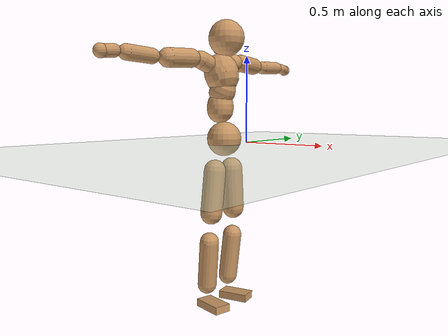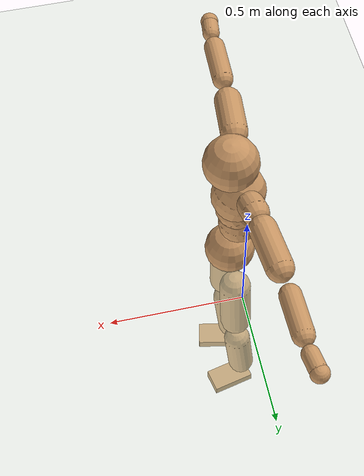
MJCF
<mujoco model="humanoid">
  <compiler coordinate="local"/>
  <default>
    <joint damping="0.0" armature="0.01" stiffness="0.0" limited="true"/>
    <geom conaffinity="1" condim="3" contype="7" margin="0.001" rgba="0.8 0.6 .4 1"/>
  </default>
  <asset>
    <texture type="skybox" builtin="gradient" rgb1=".4 .5 .6" rgb2="0 0 0" width="100" height="100"/>
    <texture builtin="flat" height="1278" mark="cross" markrgb="1 1 1" name="texgeom" random="0.01" rgb1="0.8 0.6 0.4" rgb2="0.8 0.6 0.4" type="cube" width="127"/>
    <texture builtin="checker" height="100" name="texplane" rgb1="0 0 0" rgb2="0.8 0.8 0.8" type="2d" width="100"/>
    <material name="MatPlane" reflectance="0.5" shininess="1" specular="1" texrepeat="60 60" texture="texplane"/>
    <material name="geom" texture="texgeom" texuniform="true"/>
  </asset>
  <worldbody>
    <light cutoff="100" diffuse="1 1 1" dir="-0 0 -1.3" directional="true" exponent="1" pos="0 0 1.3" specular=".1 .1 .1"/>
    <geom conaffinity="1" condim="3" name="floor" pos="0 0 0" rgba="0.8 0.9 0.8 1" size="100 100 .2" type="plane" material="MatPlane"/>
    <body name="Pelvis" pos="-0.0016 -0.2076 0.0299">
      <freejoint name="Pelvis"/>
      <geom type="sphere" contype="1" conaffinity="1" density="500" size="0.0963" pos="0.0000 0.0000 0.0000" name="Pelvis"/>
      <body name="L_Hip" pos="-0.0065 0.0691 -0.0941">
        <joint name="L_Hip_x" type="hinge" pos="0 0 0" axis="1 0 0" stiffness="800" damping="80" armature="0.02" range="-180.0000 180.0000"/>
        <joint name="L_Hip_y" type="hinge" pos="0 0 0" axis="0 1 0" stiffness="800" damping="80" armature="0.02" range="-180.0000 180.0000"/>
        <joint name="L_Hip_z" type="hinge" pos="0 0 0" axis="0 0 1" stiffness="800" damping="80" armature="0.02" range="-180.0000 180.0000"/>
        <geom type="capsule" contype="1" conaffinity="1" density="500" fromto="-0.0013 0.0070 -0.0785 -0.0051 0.0280 -0.3140" size="0.0617" name="L_Hip"/>
        <body name="L_Knee" pos="-0.0063 0.035 -0.3924">
          <joint name="L_Knee_x" type="hinge" pos="0 0 0" axis="1 0 0" stiffness="800" damping="80" armature="0.02" range="-180.0000 180.0000"/>
          <joint name="L_Knee_y" type="hinge" pos="0 0 0" axis="0 1 0" stiffness="800" damping="80" armature="0.02" range="-180.0000 180.0000"/>
          <joint name="L_Knee_z" type="hinge" pos="0 0 0" axis="0 0 1" stiffness="800" damping="80" armature="0.02" range="-180.0000 180.0000"/>
          <geom type="capsule" contype="1" conaffinity="1" density="500" fromto="-0.0089 -0.0027 -0.0839 -0.0358 -0.0106 -0.3356" size="0.0537" name="L_Knee"/>
          <body name="L_Ankle" pos="-0.0447 -0.0133 -0.4195">
            <joint name="L_Ankle_x" type="hinge" pos="0 0 0" axis="1 0 0" stiffness="800" damping="80" armature="0.02" range="-180.0000 180.0000"/>
            <joint name="L_Ankle_y" type="hinge" pos="0 0 0" axis="0 1 0" stiffness="800" damping="80" armature="0.02" range="-180.0000 180.0000"/>
            <joint name="L_Ankle_z" type="hinge" pos="0 0 0" axis="0 0 1" stiffness="800" damping="80" armature="0.02" range="-180.0000 180.0000"/>
            <geom type="box" contype="1" conaffinity="1" density="500" pos="0.0601 0.0131 -0.0289" size="0.0863 0.0475 0.0213" quat="0.9943 0.0000 0.0000 0.1070" name="L_Ankle"/>
            <body name="L_Toe" pos="0.1202 0.0262 -0.0579">
              <joint name="L_Toe_x" type="hinge" pos="0 0 0" axis="1 0 0" stiffness="500" damping="50" armature="0.02" range="-180.0000 180.0000"/>
              <joint name="L_Toe_y" type="hinge" pos="0 0 0" axis="0 1 0" stiffness="500" damping="50" armature="0.02" range="-180.0000 180.0000"/>
              <joint name="L_Toe_z" type="hinge" pos="0 0 0" axis="0 0 1" stiffness="500" damping="50" armature="0.02" range="-180.0000 180.0000"/>
              <geom type="box" contype="1" conaffinity="1" density="500" pos="0.0000 0.0000 0.0282" size="0.001 0.0023 0.001" quat="0.9936 0.0000 0.0000 0.1131" name="L_Toe"/>
            </body>
          </body>
        </body>
      </body>
      <body name="R_Hip" pos="-0.0024 -0.0674 -0.0936">
        <joint name="R_Hip_x" type="hinge" pos="0 0 0" axis="1 0 0" stiffness="800" damping="80" armature="0.02" range="-180.0000 180.0000"/>
        <joint name="R_Hip_y" type="hinge" pos="0 0 0" axis="0 1 0" stiffness="800" damping="80" armature="0.02" range="-180.0000 180.0000"/>
        <joint name="R_Hip_z" type="hinge" pos="0 0 0" axis="0 0 1" stiffness="800" damping="80" armature="0.02" range="-180.0000 180.0000"/>
        <geom type="capsule" contype="1" conaffinity="1" density="500" fromto="-0.0022 -0.0079 -0.0800 -0.0088 -0.0316 -0.3199" size="0.0609" name="R_Hip"/>
        <body name="R_Knee" pos="-0.011 -0.0395 -0.3999">
          <joint name="R_Knee_x" type="hinge" pos="0 0 0" axis="1 0 0" stiffness="800" damping="80" armature="0.02" range="-180.0000 180.0000"/>
          <joint name="R_Knee_y" type="hinge" pos="0 0 0" axis="0 1 0" stiffness="800" damping="80" armature="0.02" range="-180.0000 180.0000"/>
          <joint name="R_Knee_z" type="hinge" pos="0 0 0" axis="0 0 1" stiffness="800" damping="80" armature="0.02" range="-180.0000 180.0000"/>
          <geom type="capsule" contype="1" conaffinity="1" density="500" fromto="-0.0088 0.0031 -0.0839 -0.0350 0.0124 -0.3357" size="0.0539" name="R_Knee"/>
          <body name="R_Ankle" pos="-0.0438 0.0155 -0.4196">
            <joint name="R_Ankle_x" type="hinge" pos="0 0 0" axis="1 0 0" stiffness="800" damping="80" armature="0.02" range="-180.0000 180.0000"/>
            <joint name="R_Ankle_y" type="hinge" pos="0 0 0" axis="0 1 0" stiffness="800" damping="80" armature="0.02" range="-180.0000 180.0000"/>
            <joint name="R_Ankle_z" type="hinge" pos="0 0 0" axis="0 0 1" stiffness="800" damping="80" armature="0.02" range="-180.0000 180.0000"/>
            <geom type="box" contype="1" conaffinity="1" density="500" pos="0.0621 -0.0128 -0.0242" size="0.0881 0.0475 0.0211" quat="0.9949 0.0000 0.0000 -0.1012" name="R_Ankle"/>
            <body name="R_Toe" pos="0.1242 -0.0255 -0.0485">
              <joint name="R_Toe_x" type="hinge" pos="0 0 0" axis="1 0 0" stiffness="500" damping="50" armature="0.02" range="-180.0000 180.0000"/>
              <joint name="R_Toe_y" type="hinge" pos="0 0 0" axis="0 1 0" stiffness="500" damping="50" armature="0.02" range="-180.0000 180.0000"/>
              <joint name="R_Toe_z" type="hinge" pos="0 0 0" axis="0 0 1" stiffness="500" damping="50" armature="0.02" range="-180.0000 180.0000"/>
              <geom type="box" contype="1" conaffinity="1" density="500" pos="0.0000 0.0000 0.0256" size="0.0009 0.0024 0.0011" quat="0.9958 0.0000 0.0000 -0.0920" name="R_Toe"/>
            </body>
          </body>
        </body>
      </body>
      <body name="Torso" pos="-0.0272 -0.0025 0.1103">
        <joint name="Torso_x" type="hinge" pos="0 0 0" axis="1 0 0" stiffness="1000" damping="100" armature="0.02" range="-180.0000 180.0000"/>
        <joint name="Torso_y" type="hinge" pos="0 0 0" axis="0 1 0" stiffness="1000" damping="100" armature="0.02" range="-180.0000 180.0000"/>
        <joint name="Torso_z" type="hinge" pos="0 0 0" axis="0 0 1" stiffness="1000" damping="100" armature="0.02" range="-180.0000 180.0000"/>
        <geom type="capsule" contype="1" conaffinity="1" density="500" fromto="-0.0015 0.0029 0.0779 -0.0010 0.0019 0.0519" size="0.075" name="Torso"/>
        <body name="Spine" pos="-0.0024 0.0049 0.1299">
          <joint name="Spine_x" type="hinge" pos="0 0 0" axis="1 0 0" stiffness="1000" damping="100" armature="0.02" range="-180.0000 180.0000"/>
          <joint name="Spine_y" type="hinge" pos="0 0 0" axis="0 1 0" stiffness="1000" damping="100" armature="0.02" range="-180.0000 180.0000"/>
          <joint name="Spine_z" type="hinge" pos="0 0 0" axis="0 0 1" stiffness="1000" damping="100" armature="0.02" range="-180.0000 180.0000"/>
          <geom type="capsule" contype="1" conaffinity="1" density="500" fromto="0.0167 0.0010 0.0300 0.0111 0.0007 0.0200" size="0.0741" name="Spine"/>
          <body name="Chest" pos="0.0279 0.0017 0.05">
            <joint name="Chest_x" type="hinge" pos="0 0 0" axis="1 0 0" stiffness="1000" damping="100" armature="0.02" range="-180.0000 180.0000"/>
            <joint name="Chest_y" type="hinge" pos="0 0 0" axis="0 1 0" stiffness="1000" damping="100" armature="0.02" range="-180.0000 180.0000"/>
            <joint name="Chest_z" type="hinge" pos="0 0 0" axis="0 0 1" stiffness="1000" damping="100" armature="0.02" range="-180.0000 180.0000"/>
            <geom type="capsule" contype="1" conaffinity="1" density="500" fromto="-0.0236 -0.0006 0.0871 -0.0157 -0.0004 0.0581" size="0.0959" name="Chest"/>
            <body name="Neck" pos="-0.04 -0.0014 0.2028">
              <joint name="Neck_x" type="hinge" pos="0 0 0" axis="1 0 0" stiffness="500" damping="50" armature="0.02" range="-180.0000 180.0000"/>
              <joint name="Neck_y" type="hinge" pos="0 0 0" axis="0 1 0" stiffness="500" damping="50" armature="0.02" range="-180.0000 180.0000"/>
              <joint name="Neck_z" type="hinge" pos="0 0 0" axis="0 0 1" stiffness="500" damping="50" armature="0.02" range="-180.0000 180.0000"/>
              <geom type="capsule" contype="1" conaffinity="1" density="500" fromto="0.0106 0.0008 0.0123 0.0422 0.0032 0.0491" size="0.042" name="Neck"/>
              <body name="Head" pos="0.0528 0.004 0.0613">
                <joint name="Head_x" type="hinge" pos="0 0 0" axis="1 0 0" stiffness="500" damping="50" armature="0.02" range="-180.0000 180.0000"/>
                <joint name="Head_y" type="hinge" pos="0 0 0" axis="0 1 0" stiffness="500" damping="50" armature="0.02" range="-180.0000 180.0000"/>
                <joint name="Head_z" type="hinge" pos="0 0 0" axis="0 0 1" stiffness="500" damping="50" armature="0.02" range="-180.0000 180.0000"/>
                <geom type="sphere" contype="1" conaffinity="1" density="500" size="0.0997" pos="0.0000 0.0000 0.0000" name="Head"/>
              </body>
            </body>
            <body name="L_Thorax" pos="-0.0372 0.0736 0.1173">
              <joint name="L_Thorax_x" type="hinge" pos="0 0 0" axis="1 0 0" stiffness="500" damping="50" armature="0.02" range="-180.0000 180.0000"/>
              <joint name="L_Thorax_y" type="hinge" pos="0 0 0" axis="0 1 0" stiffness="500" damping="50" armature="0.02" range="-180.0000 180.0000"/>
              <joint name="L_Thorax_z" type="hinge" pos="0 0 0" axis="0 0 1" stiffness="500" damping="50" armature="0.02" range="-180.0000 180.0000"/>
              <geom type="capsule" contype="1" conaffinity="1" density="500" fromto="-0.0015 0.0162 0.0061 -0.0061 0.0650 0.0242" size="0.0497" name="L_Thorax"/>
              <body name="L_Shoulder" pos="-0.0077 0.0812 0.0303">
                <joint name="L_Shoulder_x" type="hinge" pos="0 0 0" axis="1 0 0" stiffness="500" damping="50" armature="0.02" range="-720.0000 720.0000"/>
                <joint name="L_Shoulder_y" type="hinge" pos="0 0 0" axis="0 1 0" stiffness="500" damping="50" armature="0.02" range="-720.0000 720.0000"/>
                <joint name="L_Shoulder_z" type="hinge" pos="0 0 0" axis="0 0 1" stiffness="500" damping="50" armature="0.02" range="-720.0000 720.0000"/>
                <geom type="capsule" contype="1" conaffinity="1" density="500" fromto="-0.0060 0.0527 -0.0026 -0.0240 0.2110 -0.0106" size="0.0498" name="L_Shoulder"/>
                <body name="L_Elbow" pos="-0.03 0.2637 -0.0132">
                  <joint name="L_Elbow_x" type="hinge" pos="0 0 0" axis="1 0 0" stiffness="500" damping="50" armature="0.02" range="-720.0000 720.0000"/>
                  <joint name="L_Elbow_y" type="hinge" pos="0 0 0" axis="0 1 0" stiffness="500" damping="50" armature="0.02" range="-720.0000 720.0000"/>
                  <joint name="L_Elbow_z" type="hinge" pos="0 0 0" axis="0 0 1" stiffness="500" damping="50" armature="0.02" range="-720.0000 720.0000"/>
                  <geom type="capsule" contype="1" conaffinity="1" density="500" fromto="-0.0004 0.0509 0.0020 -0.0017 0.2036 0.0082" size="0.0392" name="L_Elbow"/>
                  <body name="L_Wrist" pos="-0.0021 0.2545 0.0102">
                    <joint name="L_Wrist_x" type="hinge" pos="0 0 0" axis="1 0 0" stiffness="300" damping="30" armature="0.02" range="-180.0000 180.0000"/>
                    <joint name="L_Wrist_y" type="hinge" pos="0 0 0" axis="0 1 0" stiffness="300" damping="30" armature="0.02" range="-180.0000 180.0000"/>
                    <joint name="L_Wrist_z" type="hinge" pos="0 0 0" axis="0 0 1" stiffness="300" damping="30" armature="0.02" range="-180.0000 180.0000"/>
                    <geom type="capsule" contype="1" conaffinity="1" density="500" fromto="-0.0030 0.0167 -0.0018 -0.0119 0.0670 -0.0071" size="0.0314" name="L_Wrist"/>
                    <body name="L_Hand" pos="-0.0149 0.0837 -0.0088">
                      <joint name="L_Hand_x" type="hinge" pos="0 0 0" axis="1 0 0" stiffness="300" damping="30" armature="0.02" range="-180.0000 180.0000"/>
                      <joint name="L_Hand_y" type="hinge" pos="0 0 0" axis="0 1 0" stiffness="300" damping="30" armature="0.02" range="-180.0000 180.0000"/>
                      <joint name="L_Hand_z" type="hinge" pos="0 0 0" axis="0 0 1" stiffness="300" damping="30" armature="0.02" range="-180.0000 180.0000"/>
                      <geom type="sphere" contype="1" conaffinity="1" density="500" size="0.0336" pos="0.0000 0.0000 0.0000" name="L_Hand"/>
                    </body>
                  </body>
                </body>
              </body>
            </body>
            <body name="R_Thorax" pos="-0.0409 -0.0752 0.1152">
              <joint name="R_Thorax_x" type="hinge" pos="0 0 0" axis="1 0 0" stiffness="500" damping="50" armature="0.02" range="-180.0000 180.0000"/>
              <joint name="R_Thorax_y" type="hinge" pos="0 0 0" axis="0 1 0" stiffness="500" damping="50" armature="0.02" range="-180.0000 180.0000"/>
              <joint name="R_Thorax_z" type="hinge" pos="0 0 0" axis="0 0 1" stiffness="500" damping="50" armature="0.02" range="-180.0000 180.0000"/>
              <geom type="capsule" contype="1" conaffinity="1" density="500" fromto="-0.0016 -0.0174 0.0061 -0.0064 -0.0696 0.0242" size="0.049" name="R_Thorax"/>
              <body name="R_Shoulder" pos="-0.008 -0.087 0.0303">
                <joint name="R_Shoulder_x" type="hinge" pos="0 0 0" axis="1 0 0" stiffness="500" damping="50" armature="0.02" range="-720.0000 720.0000"/>
                <joint name="R_Shoulder_y" type="hinge" pos="0 0 0" axis="0 1 0" stiffness="500" damping="50" armature="0.02" range="-720.0000 720.0000"/>
                <joint name="R_Shoulder_z" type="hinge" pos="0 0 0" axis="0 0 1" stiffness="500" damping="50" armature="0.02" range="-720.0000 720.0000"/>
                <geom type="capsule" contype="1" conaffinity="1" density="500" fromto="-0.0046 -0.0515 -0.0025 -0.0183 -0.2059 -0.0100" size="0.0512" name="R_Shoulder"/>
                <body name="R_Elbow" pos="-0.0228 -0.2574 -0.0126">
                  <joint name="R_Elbow_x" type="hinge" pos="0 0 0" axis="1 0 0" stiffness="500" damping="50" armature="0.02" range="-720.0000 720.0000"/>
                  <joint name="R_Elbow_y" type="hinge" pos="0 0 0" axis="0 1 0" stiffness="500" damping="50" armature="0.02" range="-720.0000 720.0000"/>
                  <joint name="R_Elbow_z" type="hinge" pos="0 0 0" axis="0 0 1" stiffness="500" damping="50" armature="0.02" range="-720.0000 720.0000"/>
                  <geom type="capsule" contype="1" conaffinity="1" density="500" fromto="-0.0013 -0.0525 0.0021 -0.0052 -0.2102 0.0084" size="0.0397" name="R_Elbow"/>
                  <body name="R_Wrist" pos="-0.0065 -0.2627 0.0105">
                    <joint name="R_Wrist_x" type="hinge" pos="0 0 0" axis="1 0 0" stiffness="300" damping="30" armature="0.02" range="-180.0000 180.0000"/>
                    <joint name="R_Wrist_y" type="hinge" pos="0 0 0" axis="0 1 0" stiffness="300" damping="30" armature="0.02" range="-180.0000 180.0000"/>
                    <joint name="R_Wrist_z" type="hinge" pos="0 0 0" axis="0 0 1" stiffness="300" damping="30" armature="0.02" range="-180.0000 180.0000"/>
                    <geom type="capsule" contype="1" conaffinity="1" density="500" fromto="-0.0021 -0.0170 -0.0013 -0.0086 -0.0678 -0.0054" size="0.0324" name="R_Wrist"/>
                    <body name="R_Hand" pos="-0.0107 -0.0848 -0.0067">
                      <joint name="R_Hand_x" type="hinge" pos="0 0 0" axis="1 0 0" stiffness="300" damping="30" armature="0.02" range="-180.0000 180.0000"/>
                      <joint name="R_Hand_y" type="hinge" pos="0 0 0" axis="0 1 0" stiffness="300" damping="30" armature="0.02" range="-180.0000 180.0000"/>
                      <joint name="R_Hand_z" type="hinge" pos="0 0 0" axis="0 0 1" stiffness="300" damping="30" armature="0.02" range="-180.0000 180.0000"/>
                      <geom type="sphere" contype="1" conaffinity="1" density="500" size="0.0340" pos="0.0000 0.0000 0.0000" name="R_Hand"/>
                    </body>
                  </body>
                </body>
              </body>
            </body>
          </body>
        </body>
      </body>
    </body>
  </worldbody>
  <actuator>
    <motor name="L_Hip_x" joint="L_Hip_x" gear="500"/>
    <motor name="L_Hip_y" joint="L_Hip_y" gear="500"/>
    <motor name="L_Hip_z" joint="L_Hip_z" gear="500"/>
    <motor name="L_Knee_x" joint="L_Knee_x" gear="500"/>
    <motor name="L_Knee_y" joint="L_Knee_y" gear="500"/>
    <motor name="L_Knee_z" joint="L_Knee_z" gear="500"/>
    <motor name="L_Ankle_x" joint="L_Ankle_x" gear="500"/>
    <motor name="L_Ankle_y" joint="L_Ankle_y" gear="500"/>
    <motor name="L_Ankle_z" joint="L_Ankle_z" gear="500"/>
    <motor name="L_Toe_x" joint="L_Toe_x" gear="500"/>
    <motor name="L_Toe_y" joint="L_Toe_y" gear="500"/>
    <motor name="L_Toe_z" joint="L_Toe_z" gear="500"/>
    <motor name="R_Hip_x" joint="R_Hip_x" gear="500"/>
    <motor name="R_Hip_y" joint="R_Hip_y" gear="500"/>
    <motor name="R_Hip_z" joint="R_Hip_z" gear="500"/>
    <motor name="R_Knee_x" joint="R_Knee_x" gear="500"/>
    <motor name="R_Knee_y" joint="R_Knee_y" gear="500"/>
    <motor name="R_Knee_z" joint="R_Knee_z" gear="500"/>
    <motor name="R_Ankle_x" joint="R_Ankle_x" gear="500"/>
    <motor name="R_Ankle_y" joint="R_Ankle_y" gear="500"/>
    <motor name="R_Ankle_z" joint="R_Ankle_z" gear="500"/>
    <motor name="R_Toe_x" joint="R_Toe_x" gear="500"/>
    <motor name="R_Toe_y" joint="R_Toe_y" gear="500"/>
    <motor name="R_Toe_z" joint="R_Toe_z" gear="500"/>
    <motor name="Torso_x" joint="Torso_x" gear="500"/>
    <motor name="Torso_y" joint="Torso_y" gear="500"/>
    <motor name="Torso_z" joint="Torso_z" gear="500"/>
    <motor name="Spine_x" joint="Spine_x" gear="500"/>
    <motor name="Spine_y" joint="Spine_y" gear="500"/>
    <motor name="Spine_z" joint="Spine_z" gear="500"/>
    <motor name="Chest_x" joint="Chest_x" gear="500"/>
    <motor name="Chest_y" joint="Chest_y" gear="500"/>
    <motor name="Chest_z" joint="Chest_z" gear="500"/>
    <motor name="Neck_x" joint="Neck_x" gear="500"/>
    <motor name="Neck_y" joint="Neck_y" gear="500"/>
    <motor name="Neck_z" joint="Neck_z" gear="500"/>
    <motor name="Head_x" joint="Head_x" gear="500"/>
    <motor name="Head_y" joint="Head_y" gear="500"/>
    <motor name="Head_z" joint="Head_z" gear="500"/>
    <motor name="L_Thorax_x" joint="L_Thorax_x" gear="500"/>
    <motor name="L_Thorax_y" joint="L_Thorax_y" gear="500"/>
    <motor name="L_Thorax_z" joint="L_Thorax_z" gear="500"/>
    <motor name="L_Shoulder_x" joint="L_Shoulder_x" gear="500"/>
    <motor name="L_Shoulder_y" joint="L_Shoulder_y" gear="500"/>
    <motor name="L_Shoulder_z" joint="L_Shoulder_z" gear="500"/>
    <motor name="L_Elbow_x" joint="L_Elbow_x" gear="500"/>
    <motor name="L_Elbow_y" joint="L_Elbow_y" gear="500"/>
    <motor name="L_Elbow_z" joint="L_Elbow_z" gear="500"/>
    <motor name="L_Wrist_x" joint="L_Wrist_x" gear="500"/>
    <motor name="L_Wrist_y" joint="L_Wrist_y" gear="500"/>
    <motor name="L_Wrist_z" joint="L_Wrist_z" gear="500"/>
    <motor name="L_Hand_x" joint="L_Hand_x" gear="500"/>
    <motor name="L_Hand_y" joint="L_Hand_y" gear="500"/>
    <motor name="L_Hand_z" joint="L_Hand_z" gear="500"/>
    <motor name="R_Thorax_x" joint="R_Thorax_x" gear="500"/>
    <motor name="R_Thorax_y" joint="R_Thorax_y" gear="500"/>
    <motor name="R_Thorax_z" joint="R_Thorax_z" gear="500"/>
    <motor name="R_Shoulder_x" joint="R_Shoulder_x" gear="500"/>
    <motor name="R_Shoulder_y" joint="R_Shoulder_y" gear="500"/>
    <motor name="R_Shoulder_z" joint="R_Shoulder_z" gear="500"/>
    <motor name="R_Elbow_x" joint="R_Elbow_x" gear="500"/>
    <motor name="R_Elbow_y" joint="R_Elbow_y" gear="500"/>
    <motor name="R_Elbow_z" joint="R_Elbow_z" gear="500"/>
    <motor name="R_Wrist_x" joint="R_Wrist_x" gear="500"/>
    <motor name="R_Wrist_y" joint="R_Wrist_y" gear="500"/>
    <motor name="R_Wrist_z" joint="R_Wrist_z" gear="500"/>
    <motor name="R_Hand_x" joint="R_Hand_x" gear="500"/>
    <motor name="R_Hand_y" joint="R_Hand_y" gear="500"/>
    <motor name="R_Hand_z" joint="R_Hand_z" gear="500"/>
  </actuator>
  <contact>
    <exclude body1="Torso" body2="Chest"/>
    <exclude body1="Head" body2="Chest"/>
    <exclude body1="R_Knee" body2="R_Toe"/>
    <exclude body1="R_Knee" body2="L_Ankle"/>
    <exclude body1="R_Knee" body2="L_Toe"/>
    <exclude body1="L_Knee" body2="L_Toe"/>
    <exclude body1="L_Knee" body2="R_Ankle"/>
    <exclude body1="L_Knee" body2="R_Toe"/>
    <exclude body1="L_Shoulder" body2="Chest"/>
    <exclude body1="R_Shoulder" body2="Chest"/>
  </contact>
  <sensor/>
  <size njmax="700" nconmax="700"/>
</mujoco>
